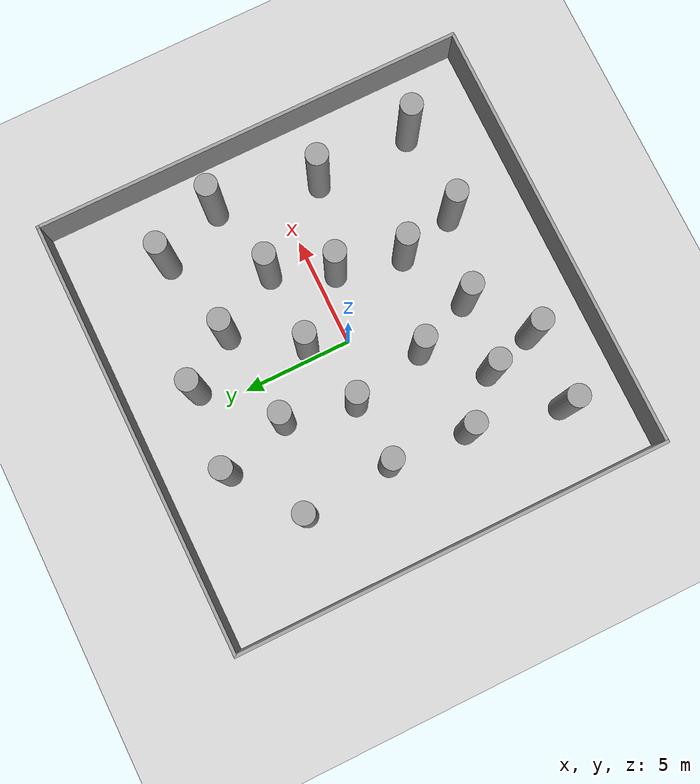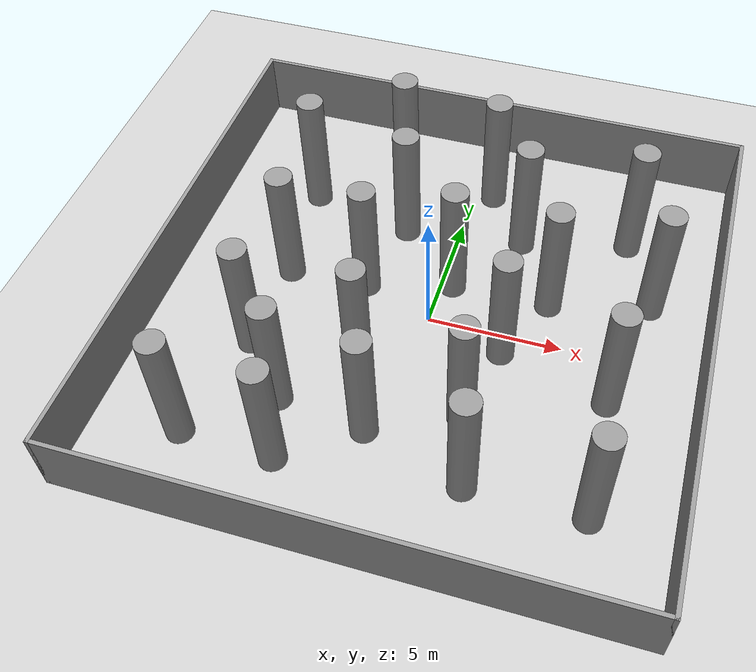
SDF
<sdf version="1.7">
 <world name="default">
  <light name="sun" type="directional">
   <pose>0 0 10 0 -0 0</pose>
   <diffuse>0.8 0.8 0.8 1</diffuse>
   <specular>0.2 0.2 0.2 1</specular>
   <attenuation>
    <range>1000</range>
    <constant>0.9</constant>
    <linear>0.01</linear>
    <quadratic>0.001</quadratic>
   </attenuation>
   <direction>-0.5 0.1 -0.9</direction>
   <spot><inner_angle>0</inner_angle><outer_angle>0</outer_angle><falloff>0</falloff></spot>
  </light>
  <model name="ground_plane">
   <static>1</static>
   <link name="link">
    <collision name="collision">
     <geometry><plane><normal>0 0 1</normal><size>100 100</size></plane></geometry>
     <surface><friction><ode><mu>100</mu><mu2>50</mu2></ode></friction></surface>
    </collision>
    <visual name="visual">
     <cast_shadows>0</cast_shadows>
     <geometry><plane><normal>0 0 1</normal><size>100 100</size></plane></geometry>
     <material>
      <script><uri>file://media/materials/scripts/gazebo.material</uri><name>Gazebo/Grey</name></script>
     </material>
    </visual>
   </link>
  </model>
  <gravity>0 0 -9.8</gravity>
  <magnetic_field>6e-06 2.3e-05 -4.2e-05</magnetic_field>
  <atmosphere type="adiabatic"/>
  <physics type="ode">
   <max_step_size>0.001</max_step_size>
   <real_time_factor>1</real_time_factor>
   <real_time_update_rate>1000</real_time_update_rate>
  </physics>
  <scene><ambient>0.4 0.4 0.4 1</ambient><background>0.7 0.7 0.7 1</background><shadows>1</shadows></scene>
  <spherical_coordinates>
   <surface_model>EARTH_WGS84</surface_model>
   <latitude_deg>0</latitude_deg>
   <longitude_deg>0</longitude_deg>
   <elevation>0</elevation>
   <heading_deg>0</heading_deg>
  </spherical_coordinates>
  <model name="Fence20">
   <link name="Wall_0">
    <collision name="Wall_0_Collision">
     <geometry><box><size>20.15 0.15 2.5</size></box></geometry>
     <pose>0 0 1.25 0 -0 0</pose>
    </collision>
    <visual name="Wall_0_Visual">
     <pose>0 0 1.25 0 -0 0</pose>
     <geometry><box><size>20.15 0.15 2.5</size></box></geometry>
     <material>
      <script><uri>file://media/materials/scripts/gazebo.material</uri><name>Gazebo/Grey</name></script>
      <ambient>1 1 1 1</ambient>
     </material>
     <meta><layer>0</layer></meta>
    </visual>
    <pose>0 -10 0 0 -0 0</pose>
   </link>
   <link name="Wall_1">
    <collision name="Wall_1_Collision">
     <geometry><box><size>20.15 0.15 2.5</size></box></geometry>
     <pose>0 0 1.25 0 -0 0</pose>
    </collision>
    <visual name="Wall_1_Visual">
     <pose>0 0 1.25 0 -0 0</pose>
     <geometry><box><size>20.15 0.15 2.5</size></box></geometry>
     <material>
      <script><uri>file://media/materials/scripts/gazebo.material</uri><name>Gazebo/Grey</name></script>
      <ambient>1 1 1 1</ambient>
     </material>
     <meta><layer>0</layer></meta>
    </visual>
    <pose>10 0 0 0 -0 1.5708</pose>
   </link>
   <link name="Wall_2">
    <collision name="Wall_2_Collision">
     <geometry><box><size>20.15 0.15 2.5</size></box></geometry>
     <pose>0 0 1.25 0 -0 0</pose>
    </collision>
    <visual name="Wall_2_Visual">
     <pose>0 0 1.25 0 -0 0</pose>
     <geometry><box><size>20.15 0.15 2.5</size></box></geometry>
     <material>
      <script><uri>file://media/materials/scripts/gazebo.material</uri><name>Gazebo/Grey</name></script>
      <ambient>1 1 1 1</ambient>
     </material>
     <meta><layer>0</layer></meta>
    </visual>
    <pose>0 10 0 0 -0 3.14159</pose>
   </link>
   <link name="Wall_3">
    <collision name="Wall_3_Collision">
     <geometry><box><size>20.15 0.15 2.5</size></box></geometry>
     <pose>0 0 1.25 0 -0 0</pose>
    </collision>
    <visual name="Wall_3_Visual">
     <pose>0 0 1.25 0 -0 0</pose>
     <geometry><box><size>20.15 0.15 2.5</size></box></geometry>
     <material>
      <script><uri>file://media/materials/scripts/gazebo.material</uri><name>Gazebo/Grey</name></script>
      <ambient>1 1 1 1</ambient>
     </material>
     <meta><layer>0</layer></meta>
    </visual>
    <pose>-10 0 0 0 -0 -1.5708</pose>
   </link>
   <static>1</static>
  </model>
  <model name="cylinder5">
   <link name="link">
    <inertial>
     <mass>1</mass>
     <inertia><ixx>0.145833</ixx><ixy>0</ixy><ixz>0</ixz><iyy>0.145833</iyy><iyz>0</iyz><izz>0.125</izz></inertia>
    </inertial>
    <kinematic>1</kinematic>
    <visual name="visual">
     <geometry><cylinder><radius>0.5</radius><length>5</length></cylinder></geometry>
     <material>
      <script><name>Gazebo/Grey</name><uri>file://media/materials/scripts/gazebo.material</uri></script>
      <shader type="pixel"><normal_map>__default__</normal_map></shader>
      <ambient>0.3 0.3 0.3 1</ambient>
      <diffuse>0.7 0.7 0.7 1</diffuse>
      <specular>0.01 0.01 0.01 1</specular>
      <emissive>0 0 0 1</emissive>
     </material>
    </visual>
    <collision name="collision">
     <geometry><cylinder><radius>0.5</radius><length>5</length></cylinder></geometry>
     <surface>
      <friction>
       <ode><mu>1</mu><mu2>1</mu2><fdir1>0 0 0</fdir1><slip1>0</slip1><slip2>0</slip2></ode>
       <torsional>
        <coefficient>1</coefficient>
        <patch_radius>0</patch_radius>
        <surface_radius>0</surface_radius>
        <use_patch_radius>1</use_patch_radius>
        <ode><slip>0</slip></ode>
       </torsional>
      </friction>
      <bounce><restitution_coefficient>0</restitution_coefficient><threshold>1e+06</threshold></bounce>
      <contact>
       <collide_without_contact>0</collide_without_contact>
       <collide_without_contact_bitmask>1</collide_without_contact_bitmask>
       <collide_bitmask>1</collide_bitmask>
       <ode>
        <soft_cfm>0</soft_cfm>
        <soft_erp>0.2</soft_erp>
        <kp>1e+13</kp>
        <kd>1</kd>
        <max_vel>0.01</max_vel>
        <min_depth>0</min_depth>
       </ode>
       <bullet>
        <split_impulse>1</split_impulse>
        <split_impulse_penetration_threshold>-0.01</split_impulse_penetration_threshold>
        <soft_cfm>0</soft_cfm>
        <soft_erp>0.2</soft_erp>
        <kp>1e+13</kp>
        <kd>1</kd>
       </bullet>
      </contact>
     </surface>
    </collision>
   </link>
   <static>0</static>
   <pose>-1.85959 -2.57782 2.49999 0 -0 0.000166</pose>
  </model>
  <model name="cylinder5_clone">
   <link name="link">
    <inertial>
     <mass>1</mass>
     <inertia><ixx>0.145833</ixx><ixy>0</ixy><ixz>0</ixz><iyy>0.145833</iyy><iyz>0</iyz><izz>0.125</izz></inertia>
    </inertial>
    <kinematic>1</kinematic>
    <visual name="visual">
     <geometry><cylinder><radius>0.5</radius><length>5</length></cylinder></geometry>
     <material>
      <script><name>Gazebo/Grey</name><uri>file://media/materials/scripts/gazebo.material</uri></script>
      <shader type="pixel"><normal_map>__default__</normal_map></shader>
      <ambient>0.3 0.3 0.3 1</ambient>
      <diffuse>0.7 0.7 0.7 1</diffuse>
      <specular>0.01 0.01 0.01 1</specular>
      <emissive>0 0 0 1</emissive>
     </material>
    </visual>
    <collision name="collision">
     <geometry><cylinder><radius>0.5</radius><length>5</length></cylinder></geometry>
     <surface>
      <friction>
       <ode><mu>1</mu><mu2>1</mu2><fdir1>0 0 0</fdir1><slip1>0</slip1><slip2>0</slip2></ode>
       <torsional>
        <coefficient>1</coefficient>
        <patch_radius>0</patch_radius>
        <surface_radius>0</surface_radius>
        <use_patch_radius>1</use_patch_radius>
        <ode><slip>0</slip></ode>
       </torsional>
      </friction>
      <bounce><restitution_coefficient>0</restitution_coefficient><threshold>1e+06</threshold></bounce>
      <contact>
       <collide_without_contact>0</collide_without_contact>
       <collide_without_contact_bitmask>1</collide_without_contact_bitmask>
       <collide_bitmask>1</collide_bitmask>
       <ode>
        <soft_cfm>0</soft_cfm>
        <soft_erp>0.2</soft_erp>
        <kp>1e+13</kp>
        <kd>1</kd>
        <max_vel>0.01</max_vel>
        <min_depth>0</min_depth>
       </ode>
       <bullet>
        <split_impulse>1</split_impulse>
        <split_impulse_penetration_threshold>-0.01</split_impulse_penetration_threshold>
        <soft_cfm>0</soft_cfm>
        <soft_erp>0.2</soft_erp>
        <kp>1e+13</kp>
        <kd>1</kd>
       </bullet>
      </contact>
     </surface>
    </collision>
   </link>
   <static>0</static>
   <pose>3.0107 -6.4629 2.5 0 -0 0.000166</pose>
  </model>
  <model name="cylinder5_clone_0">
   <link name="link">
    <inertial>
     <mass>1</mass>
     <inertia><ixx>0.145833</ixx><ixy>0</ixy><ixz>0</ixz><iyy>0.145833</iyy><iyz>0</iyz><izz>0.125</izz></inertia>
    </inertial>
    <kinematic>1</kinematic>
    <visual name="visual">
     <geometry><cylinder><radius>0.5</radius><length>5</length></cylinder></geometry>
     <material>
      <script><name>Gazebo/Grey</name><uri>file://media/materials/scripts/gazebo.material</uri></script>
      <shader type="pixel"><normal_map>__default__</normal_map></shader>
      <ambient>0.3 0.3 0.3 1</ambient>
      <diffuse>0.7 0.7 0.7 1</diffuse>
      <specular>0.01 0.01 0.01 1</specular>
      <emissive>0 0 0 1</emissive>
     </material>
    </visual>
    <collision name="collision">
     <geometry><cylinder><radius>0.5</radius><length>5</length></cylinder></geometry>
     <surface>
      <friction>
       <ode><mu>1</mu><mu2>1</mu2><fdir1>0 0 0</fdir1><slip1>0</slip1><slip2>0</slip2></ode>
       <torsional>
        <coefficient>1</coefficient>
        <patch_radius>0</patch_radius>
        <surface_radius>0</surface_radius>
        <use_patch_radius>1</use_patch_radius>
        <ode><slip>0</slip></ode>
       </torsional>
      </friction>
      <bounce><restitution_coefficient>0</restitution_coefficient><threshold>1e+06</threshold></bounce>
      <contact>
       <collide_without_contact>0</collide_without_contact>
       <collide_without_contact_bitmask>1</collide_without_contact_bitmask>
       <collide_bitmask>1</collide_bitmask>
       <ode>
        <soft_cfm>0</soft_cfm>
        <soft_erp>0.2</soft_erp>
        <kp>1e+13</kp>
        <kd>1</kd>
        <max_vel>0.01</max_vel>
        <min_depth>0</min_depth>
       </ode>
       <bullet>
        <split_impulse>1</split_impulse>
        <split_impulse_penetration_threshold>-0.01</split_impulse_penetration_threshold>
        <soft_cfm>0</soft_cfm>
        <soft_erp>0.2</soft_erp>
        <kp>1e+13</kp>
        <kd>1</kd>
       </bullet>
      </contact>
     </surface>
    </collision>
   </link>
   <static>0</static>
   <pose>-3.30986 -7.1593 2.5 0 -0 0.000166</pose>
  </model>
  <model name="cylinder5_clone_1">
   <link name="link">
    <inertial>
     <mass>1</mass>
     <inertia><ixx>0.145833</ixx><ixy>0</ixy><ixz>0</ixz><iyy>0.145833</iyy><iyz>0</iyz><izz>0.125</izz></inertia>
    </inertial>
    <kinematic>1</kinematic>
    <visual name="visual">
     <geometry><cylinder><radius>0.5</radius><length>5</length></cylinder></geometry>
     <material>
      <script><name>Gazebo/Grey</name><uri>file://media/materials/scripts/gazebo.material</uri></script>
      <shader type="pixel"><normal_map>__default__</normal_map></shader>
      <ambient>0.3 0.3 0.3 1</ambient>
      <diffuse>0.7 0.7 0.7 1</diffuse>
      <specular>0.01 0.01 0.01 1</specular>
      <emissive>0 0 0 1</emissive>
     </material>
    </visual>
    <collision name="collision">
     <geometry><cylinder><radius>0.5</radius><length>5</length></cylinder></geometry>
     <surface>
      <friction>
       <ode><mu>1</mu><mu2>1</mu2><fdir1>0 0 0</fdir1><slip1>0</slip1><slip2>0</slip2></ode>
       <torsional>
        <coefficient>1</coefficient>
        <patch_radius>0</patch_radius>
        <surface_radius>0</surface_radius>
        <use_patch_radius>1</use_patch_radius>
        <ode><slip>0</slip></ode>
       </torsional>
      </friction>
      <bounce><restitution_coefficient>0</restitution_coefficient><threshold>1e+06</threshold></bounce>
      <contact>
       <collide_without_contact>0</collide_without_contact>
       <collide_without_contact_bitmask>1</collide_without_contact_bitmask>
       <collide_bitmask>1</collide_bitmask>
       <ode>
        <soft_cfm>0</soft_cfm>
        <soft_erp>0.2</soft_erp>
        <kp>1e+13</kp>
        <kd>1</kd>
        <max_vel>0.01</max_vel>
        <min_depth>0</min_depth>
       </ode>
       <bullet>
        <split_impulse>1</split_impulse>
        <split_impulse_penetration_threshold>-0.01</split_impulse_penetration_threshold>
        <soft_cfm>0</soft_cfm>
        <soft_erp>0.2</soft_erp>
        <kp>1e+13</kp>
        <kd>1</kd>
       </bullet>
      </contact>
     </surface>
    </collision>
   </link>
   <static>0</static>
   <pose>-5.88262 -2.82624 2.5 0 -0 0.000166</pose>
  </model>
  <model name="cylinder5_clone_2">
   <link name="link">
    <inertial>
     <mass>1</mass>
     <inertia><ixx>0.145833</ixx><ixy>0</ixy><ixz>0</ixz><iyy>0.145833</iyy><iyz>0</iyz><izz>0.125</izz></inertia>
    </inertial>
    <kinematic>1</kinematic>
    <visual name="visual">
     <geometry><cylinder><radius>0.5</radius><length>5</length></cylinder></geometry>
     <material>
      <script><name>Gazebo/Grey</name><uri>file://media/materials/scripts/gazebo.material</uri></script>
      <shader type="pixel"><normal_map>__default__</normal_map></shader>
      <ambient>0.3 0.3 0.3 1</ambient>
      <diffuse>0.7 0.7 0.7 1</diffuse>
      <specular>0.01 0.01 0.01 1</specular>
      <emissive>0 0 0 1</emissive>
     </material>
    </visual>
    <collision name="collision">
     <geometry><cylinder><radius>0.5</radius><length>5</length></cylinder></geometry>
     <surface>
      <friction>
       <ode><mu>1</mu><mu2>1</mu2><fdir1>0 0 0</fdir1><slip1>0</slip1><slip2>0</slip2></ode>
       <torsional>
        <coefficient>1</coefficient>
        <patch_radius>0</patch_radius>
        <surface_radius>0</surface_radius>
        <use_patch_radius>1</use_patch_radius>
        <ode><slip>0</slip></ode>
       </torsional>
      </friction>
      <bounce><restitution_coefficient>0</restitution_coefficient><threshold>1e+06</threshold></bounce>
      <contact>
       <collide_without_contact>0</collide_without_contact>
       <collide_without_contact_bitmask>1</collide_without_contact_bitmask>
       <collide_bitmask>1</collide_bitmask>
       <ode>
        <soft_cfm>0</soft_cfm>
        <soft_erp>0.2</soft_erp>
        <kp>1e+13</kp>
        <kd>1</kd>
        <max_vel>0.01</max_vel>
        <min_depth>0</min_depth>
       </ode>
       <bullet>
        <split_impulse>1</split_impulse>
        <split_impulse_penetration_threshold>-0.01</split_impulse_penetration_threshold>
        <soft_cfm>0</soft_cfm>
        <soft_erp>0.2</soft_erp>
        <kp>1e+13</kp>
        <kd>1</kd>
       </bullet>
      </contact>
     </surface>
    </collision>
   </link>
   <static>0</static>
   <pose>6.46806 5.6564 2.5 0 -0 0.000166</pose>
  </model>
  <model name="cylinder5_clone_3">
   <link name="link">
    <inertial>
     <mass>1</mass>
     <inertia><ixx>0.145833</ixx><ixy>0</ixy><ixz>0</ixz><iyy>0.145833</iyy><iyz>0</iyz><izz>0.125</izz></inertia>
    </inertial>
    <kinematic>1</kinematic>
    <visual name="visual">
     <geometry><cylinder><radius>0.5</radius><length>5</length></cylinder></geometry>
     <material>
      <script><name>Gazebo/Grey</name><uri>file://media/materials/scripts/gazebo.material</uri></script>
      <shader type="pixel"><normal_map>__default__</normal_map></shader>
      <ambient>0.3 0.3 0.3 1</ambient>
      <diffuse>0.7 0.7 0.7 1</diffuse>
      <specular>0.01 0.01 0.01 1</specular>
      <emissive>0 0 0 1</emissive>
     </material>
    </visual>
    <collision name="collision">
     <geometry><cylinder><radius>0.5</radius><length>5</length></cylinder></geometry>
     <surface>
      <friction>
       <ode><mu>1</mu><mu2>1</mu2><fdir1>0 0 0</fdir1><slip1>0</slip1><slip2>0</slip2></ode>
       <torsional>
        <coefficient>1</coefficient>
        <patch_radius>0</patch_radius>
        <surface_radius>0</surface_radius>
        <use_patch_radius>1</use_patch_radius>
        <ode><slip>0</slip></ode>
       </torsional>
      </friction>
      <bounce><restitution_coefficient>0</restitution_coefficient><threshold>1e+06</threshold></bounce>
      <contact>
       <collide_without_contact>0</collide_without_contact>
       <collide_without_contact_bitmask>1</collide_without_contact_bitmask>
       <collide_bitmask>1</collide_bitmask>
       <ode>
        <soft_cfm>0</soft_cfm>
        <soft_erp>0.2</soft_erp>
        <kp>1e+13</kp>
        <kd>1</kd>
        <max_vel>0.01</max_vel>
        <min_depth>0</min_depth>
       </ode>
       <bullet>
        <split_impulse>1</split_impulse>
        <split_impulse_penetration_threshold>-0.01</split_impulse_penetration_threshold>
        <soft_cfm>0</soft_cfm>
        <soft_erp>0.2</soft_erp>
        <kp>1e+13</kp>
        <kd>1</kd>
       </bullet>
      </contact>
     </surface>
    </collision>
   </link>
   <static>0</static>
   <pose>6.95319 -1.93149 2.5 0 -0 0.000166</pose>
  </model>
  <model name="cylinder5_clone_4">
   <link name="link">
    <inertial>
     <mass>1</mass>
     <inertia><ixx>0.145833</ixx><ixy>0</ixy><ixz>0</ixz><iyy>0.145833</iyy><iyz>0</iyz><izz>0.125</izz></inertia>
    </inertial>
    <kinematic>1</kinematic>
    <visual name="visual">
     <geometry><cylinder><radius>0.5</radius><length>5</length></cylinder></geometry>
     <material>
      <script><name>Gazebo/Grey</name><uri>file://media/materials/scripts/gazebo.material</uri></script>
      <shader type="pixel"><normal_map>__default__</normal_map></shader>
      <ambient>0.3 0.3 0.3 1</ambient>
      <diffuse>0.7 0.7 0.7 1</diffuse>
      <specular>0.01 0.01 0.01 1</specular>
      <emissive>0 0 0 1</emissive>
     </material>
    </visual>
    <collision name="collision">
     <geometry><cylinder><radius>0.5</radius><length>5</length></cylinder></geometry>
     <surface>
      <friction>
       <ode><mu>1</mu><mu2>1</mu2><fdir1>0 0 0</fdir1><slip1>0</slip1><slip2>0</slip2></ode>
       <torsional>
        <coefficient>1</coefficient>
        <patch_radius>0</patch_radius>
        <surface_radius>0</surface_radius>
        <use_patch_radius>1</use_patch_radius>
        <ode><slip>0</slip></ode>
       </torsional>
      </friction>
      <bounce><restitution_coefficient>0</restitution_coefficient><threshold>1e+06</threshold></bounce>
      <contact>
       <collide_without_contact>0</collide_without_contact>
       <collide_without_contact_bitmask>1</collide_without_contact_bitmask>
       <collide_bitmask>1</collide_bitmask>
       <ode>
        <soft_cfm>0</soft_cfm>
        <soft_erp>0.2</soft_erp>
        <kp>1e+13</kp>
        <kd>1</kd>
        <max_vel>0.01</max_vel>
        <min_depth>0</min_depth>
       </ode>
       <bullet>
        <split_impulse>1</split_impulse>
        <split_impulse_penetration_threshold>-0.01</split_impulse_penetration_threshold>
        <soft_cfm>0</soft_cfm>
        <soft_erp>0.2</soft_erp>
        <kp>1e+13</kp>
        <kd>1</kd>
       </bullet>
      </contact>
     </surface>
    </collision>
   </link>
   <static>0</static>
   <pose>-2.06466 4.08754 2.5 0 -0 0.000166</pose>
  </model>
  <model name="cylinder5_clone_5">
   <link name="link">
    <inertial>
     <mass>1</mass>
     <inertia><ixx>0.145833</ixx><ixy>0</ixy><ixz>0</ixz><iyy>0.145833</iyy><iyz>0</iyz><izz>0.125</izz></inertia>
    </inertial>
    <kinematic>1</kinematic>
    <visual name="visual">
     <geometry><cylinder><radius>0.5</radius><length>5</length></cylinder></geometry>
     <material>
      <script><name>Gazebo/Grey</name><uri>file://media/materials/scripts/gazebo.material</uri></script>
      <shader type="pixel"><normal_map>__default__</normal_map></shader>
      <ambient>0.3 0.3 0.3 1</ambient>
      <diffuse>0.7 0.7 0.7 1</diffuse>
      <specular>0.01 0.01 0.01 1</specular>
      <emissive>0 0 0 1</emissive>
     </material>
    </visual>
    <collision name="collision">
     <geometry><cylinder><radius>0.5</radius><length>5</length></cylinder></geometry>
     <surface>
      <friction>
       <ode><mu>1</mu><mu2>1</mu2><fdir1>0 0 0</fdir1><slip1>0</slip1><slip2>0</slip2></ode>
       <torsional>
        <coefficient>1</coefficient>
        <patch_radius>0</patch_radius>
        <surface_radius>0</surface_radius>
        <use_patch_radius>1</use_patch_radius>
        <ode><slip>0</slip></ode>
       </torsional>
      </friction>
      <bounce><restitution_coefficient>0</restitution_coefficient><threshold>1e+06</threshold></bounce>
      <contact>
       <collide_without_contact>0</collide_without_contact>
       <collide_without_contact_bitmask>1</collide_without_contact_bitmask>
       <collide_bitmask>1</collide_bitmask>
       <ode>
        <soft_cfm>0</soft_cfm>
        <soft_erp>0.2</soft_erp>
        <kp>1e+13</kp>
        <kd>1</kd>
        <max_vel>0.01</max_vel>
        <min_depth>0</min_depth>
       </ode>
       <bullet>
        <split_impulse>1</split_impulse>
        <split_impulse_penetration_threshold>-0.01</split_impulse_penetration_threshold>
        <soft_cfm>0</soft_cfm>
        <soft_erp>0.2</soft_erp>
        <kp>1e+13</kp>
        <kd>1</kd>
       </bullet>
      </contact>
     </surface>
    </collision>
   </link>
   <static>0</static>
   <pose>-6.10724 4.94681 2.5 0 -0 0.000166</pose>
  </model>
  <model name="cylinder5_clone_5_clone">
   <link name="link">
    <inertial>
     <mass>1</mass>
     <inertia><ixx>0.145833</ixx><ixy>0</ixy><ixz>0</ixz><iyy>0.145833</iyy><iyz>0</iyz><izz>0.125</izz></inertia>
    </inertial>
    <kinematic>1</kinematic>
    <visual name="visual">
     <geometry><cylinder><radius>0.5</radius><length>5</length></cylinder></geometry>
     <material>
      <script><name>Gazebo/Grey</name><uri>file://media/materials/scripts/gazebo.material</uri></script>
      <shader type="pixel"><normal_map>__default__</normal_map></shader>
      <ambient>0.3 0.3 0.3 1</ambient>
      <diffuse>0.7 0.7 0.7 1</diffuse>
      <specular>0.01 0.01 0.01 1</specular>
      <emissive>0 0 0 1</emissive>
     </material>
    </visual>
    <collision name="collision">
     <geometry><cylinder><radius>0.5</radius><length>5</length></cylinder></geometry>
     <surface>
      <friction>
       <ode><mu>1</mu><mu2>1</mu2><fdir1>0 0 0</fdir1><slip1>0</slip1><slip2>0</slip2></ode>
       <torsional>
        <coefficient>1</coefficient>
        <patch_radius>0</patch_radius>
        <surface_radius>0</surface_radius>
        <use_patch_radius>1</use_patch_radius>
        <ode><slip>0</slip></ode>
       </torsional>
      </friction>
      <bounce><restitution_coefficient>0</restitution_coefficient><threshold>1e+06</threshold></bounce>
      <contact>
       <collide_without_contact>0</collide_without_contact>
       <collide_without_contact_bitmask>1</collide_without_contact_bitmask>
       <collide_bitmask>1</collide_bitmask>
       <ode>
        <soft_cfm>0</soft_cfm>
        <soft_erp>0.2</soft_erp>
        <kp>1e+13</kp>
        <kd>1</kd>
        <max_vel>0.01</max_vel>
        <min_depth>0</min_depth>
       </ode>
       <bullet>
        <split_impulse>1</split_impulse>
        <split_impulse_penetration_threshold>-0.01</split_impulse_penetration_threshold>
        <soft_cfm>0</soft_cfm>
        <soft_erp>0.2</soft_erp>
        <kp>1e+13</kp>
        <kd>1</kd>
       </bullet>
      </contact>
     </surface>
    </collision>
   </link>
   <static>0</static>
   <pose>4.10589 1.84667 2.5 0 -0 0.000166</pose>
  </model>
  <model name="cylinder5_clone_5_clone_0">
   <link name="link">
    <inertial>
     <mass>1</mass>
     <inertia><ixx>0.145833</ixx><ixy>0</ixy><ixz>0</ixz><iyy>0.145833</iyy><iyz>0</iyz><izz>0.125</izz></inertia>
    </inertial>
    <kinematic>1</kinematic>
    <visual name="visual">
     <geometry><cylinder><radius>0.5</radius><length>5</length></cylinder></geometry>
     <material>
      <script><name>Gazebo/Grey</name><uri>file://media/materials/scripts/gazebo.material</uri></script>
      <shader type="pixel"><normal_map>__default__</normal_map></shader>
      <ambient>0.3 0.3 0.3 1</ambient>
      <diffuse>0.7 0.7 0.7 1</diffuse>
      <specular>0.01 0.01 0.01 1</specular>
      <emissive>0 0 0 1</emissive>
     </material>
    </visual>
    <collision name="collision">
     <geometry><cylinder><radius>0.5</radius><length>5</length></cylinder></geometry>
     <surface>
      <friction>
       <ode><mu>1</mu><mu2>1</mu2><fdir1>0 0 0</fdir1><slip1>0</slip1><slip2>0</slip2></ode>
       <torsional>
        <coefficient>1</coefficient>
        <patch_radius>0</patch_radius>
        <surface_radius>0</surface_radius>
        <use_patch_radius>1</use_patch_radius>
        <ode><slip>0</slip></ode>
       </torsional>
      </friction>
      <bounce><restitution_coefficient>0</restitution_coefficient><threshold>1e+06</threshold></bounce>
      <contact>
       <collide_without_contact>0</collide_without_contact>
       <collide_without_contact_bitmask>1</collide_without_contact_bitmask>
       <collide_bitmask>1</collide_bitmask>
       <ode>
        <soft_cfm>0</soft_cfm>
        <soft_erp>0.2</soft_erp>
        <kp>1e+13</kp>
        <kd>1</kd>
        <max_vel>0.01</max_vel>
        <min_depth>0</min_depth>
       </ode>
       <bullet>
        <split_impulse>1</split_impulse>
        <split_impulse_penetration_threshold>-0.01</split_impulse_penetration_threshold>
        <soft_cfm>0</soft_cfm>
        <soft_erp>0.2</soft_erp>
        <kp>1e+13</kp>
        <kd>1</kd>
       </bullet>
      </contact>
     </surface>
    </collision>
   </link>
   <static>0</static>
   <pose>2.27155 -3.82382 2.5 0 -0 0.000166</pose>
  </model>
  <model name="cylinder5_clone_5_clone_1">
   <link name="link">
    <inertial>
     <mass>1</mass>
     <inertia><ixx>0.145833</ixx><ixy>0</ixy><ixz>0</ixz><iyy>0.145833</iyy><iyz>0</iyz><izz>0.125</izz></inertia>
    </inertial>
    <kinematic>1</kinematic>
    <visual name="visual">
     <geometry><cylinder><radius>0.5</radius><length>5</length></cylinder></geometry>
     <material>
      <script><name>Gazebo/Grey</name><uri>file://media/materials/scripts/gazebo.material</uri></script>
      <shader type="pixel"><normal_map>__default__</normal_map></shader>
      <ambient>0.3 0.3 0.3 1</ambient>
      <diffuse>0.7 0.7 0.7 1</diffuse>
      <specular>0.01 0.01 0.01 1</specular>
      <emissive>0 0 0 1</emissive>
     </material>
    </visual>
    <collision name="collision">
     <geometry><cylinder><radius>0.5</radius><length>5</length></cylinder></geometry>
     <surface>
      <friction>
       <ode><mu>1</mu><mu2>1</mu2><fdir1>0 0 0</fdir1><slip1>0</slip1><slip2>0</slip2></ode>
       <torsional>
        <coefficient>1</coefficient>
        <patch_radius>0</patch_radius>
        <surface_radius>0</surface_radius>
        <use_patch_radius>1</use_patch_radius>
        <ode><slip>0</slip></ode>
       </torsional>
      </friction>
      <bounce><restitution_coefficient>0</restitution_coefficient><threshold>1e+06</threshold></bounce>
      <contact>
       <collide_without_contact>0</collide_without_contact>
       <collide_without_contact_bitmask>1</collide_without_contact_bitmask>
       <collide_bitmask>1</collide_bitmask>
       <ode>
        <soft_cfm>0</soft_cfm>
        <soft_erp>0.2</soft_erp>
        <kp>1e+13</kp>
        <kd>1</kd>
        <max_vel>0.01</max_vel>
        <min_depth>0</min_depth>
       </ode>
       <bullet>
        <split_impulse>1</split_impulse>
        <split_impulse_penetration_threshold>-0.01</split_impulse_penetration_threshold>
        <soft_cfm>0</soft_cfm>
        <soft_erp>0.2</soft_erp>
        <kp>1e+13</kp>
        <kd>1</kd>
       </bullet>
      </contact>
     </surface>
    </collision>
   </link>
   <static>0</static>
   <pose>0.765852 6.874 2.5 0 -0 0.000166</pose>
  </model>
  <model name="cylinder5_clone_6">
   <link name="link">
    <inertial>
     <mass>1</mass>
     <inertia><ixx>0.145833</ixx><ixy>0</ixy><ixz>0</ixz><iyy>0.145833</iyy><iyz>0</iyz><izz>0.125</izz></inertia>
    </inertial>
    <kinematic>1</kinematic>
    <visual name="visual">
     <geometry><cylinder><radius>0.5</radius><length>5</length></cylinder></geometry>
     <material>
      <script><name>Gazebo/Grey</name><uri>file://media/materials/scripts/gazebo.material</uri></script>
      <shader type="pixel"><normal_map>__default__</normal_map></shader>
      <ambient>0.3 0.3 0.3 1</ambient>
      <diffuse>0.7 0.7 0.7 1</diffuse>
      <specular>0.01 0.01 0.01 1</specular>
      <emissive>0 0 0 1</emissive>
     </material>
    </visual>
    <collision name="collision">
     <geometry><cylinder><radius>0.5</radius><length>5</length></cylinder></geometry>
     <surface>
      <friction>
       <ode><mu>1</mu><mu2>1</mu2><fdir1>0 0 0</fdir1><slip1>0</slip1><slip2>0</slip2></ode>
       <torsional>
        <coefficient>1</coefficient>
        <patch_radius>0</patch_radius>
        <surface_radius>0</surface_radius>
        <use_patch_radius>1</use_patch_radius>
        <ode><slip>0</slip></ode>
       </torsional>
      </friction>
      <bounce><restitution_coefficient>0</restitution_coefficient><threshold>1e+06</threshold></bounce>
      <contact>
       <collide_without_contact>0</collide_without_contact>
       <collide_without_contact_bitmask>1</collide_without_contact_bitmask>
       <collide_bitmask>1</collide_bitmask>
       <ode>
        <soft_cfm>0</soft_cfm>
        <soft_erp>0.2</soft_erp>
        <kp>1e+13</kp>
        <kd>1</kd>
        <max_vel>0.01</max_vel>
        <min_depth>0</min_depth>
       </ode>
       <bullet>
        <split_impulse>1</split_impulse>
        <split_impulse_penetration_threshold>-0.01</split_impulse_penetration_threshold>
        <soft_cfm>0</soft_cfm>
        <soft_erp>0.2</soft_erp>
        <kp>1e+13</kp>
        <kd>1</kd>
       </bullet>
      </contact>
     </surface>
    </collision>
   </link>
   <static>0</static>
   <pose>2.91852 -0.804112 2.49999 0 -0 0.000166</pose>
  </model>
  <model name="cylinder5_clone_7">
   <link name="link">
    <inertial>
     <mass>1</mass>
     <inertia><ixx>0.145833</ixx><ixy>0</ixy><ixz>0</ixz><iyy>0.145833</iyy><iyz>0</iyz><izz>0.125</izz></inertia>
    </inertial>
    <kinematic>1</kinematic>
    <visual name="visual">
     <geometry><cylinder><radius>0.5</radius><length>5</length></cylinder></geometry>
     <material>
      <script><name>Gazebo/Grey</name><uri>file://media/materials/scripts/gazebo.material</uri></script>
      <shader type="pixel"><normal_map>__default__</normal_map></shader>
      <ambient>0.3 0.3 0.3 1</ambient>
      <diffuse>0.7 0.7 0.7 1</diffuse>
      <specular>0.01 0.01 0.01 1</specular>
      <emissive>0 0 0 1</emissive>
     </material>
    </visual>
    <collision name="collision">
     <geometry><cylinder><radius>0.5</radius><length>5</length></cylinder></geometry>
     <surface>
      <friction>
       <ode><mu>1</mu><mu2>1</mu2><fdir1>0 0 0</fdir1><slip1>0</slip1><slip2>0</slip2></ode>
       <torsional>
        <coefficient>1</coefficient>
        <patch_radius>0</patch_radius>
        <surface_radius>0</surface_radius>
        <use_patch_radius>1</use_patch_radius>
        <ode><slip>0</slip></ode>
       </torsional>
      </friction>
      <bounce><restitution_coefficient>0</restitution_coefficient><threshold>1e+06</threshold></bounce>
      <contact>
       <collide_without_contact>0</collide_without_contact>
       <collide_without_contact_bitmask>1</collide_without_contact_bitmask>
       <collide_bitmask>1</collide_bitmask>
       <ode>
        <soft_cfm>0</soft_cfm>
        <soft_erp>0.2</soft_erp>
        <kp>1e+13</kp>
        <kd>1</kd>
        <max_vel>0.01</max_vel>
        <min_depth>0</min_depth>
       </ode>
       <bullet>
        <split_impulse>1</split_impulse>
        <split_impulse_penetration_threshold>-0.01</split_impulse_penetration_threshold>
        <soft_cfm>0</soft_cfm>
        <soft_erp>0.2</soft_erp>
        <kp>1e+13</kp>
        <kd>1</kd>
       </bullet>
      </contact>
     </surface>
    </collision>
   </link>
   <static>0</static>
   <pose>-6.7261 -7.04296 2.49999 0 -0 0.000166</pose>
  </model>
  <model name="cylinder5_clone_8">
   <link name="link">
    <inertial>
     <mass>1</mass>
     <inertia><ixx>0.145833</ixx><ixy>0</ixy><ixz>0</ixz><iyy>0.145833</iyy><iyz>0</iyz><izz>0.125</izz></inertia>
    </inertial>
    <kinematic>1</kinematic>
    <visual name="visual">
     <geometry><cylinder><radius>0.5</radius><length>5</length></cylinder></geometry>
     <material>
      <script><name>Gazebo/Grey</name><uri>file://media/materials/scripts/gazebo.material</uri></script>
      <shader type="pixel"><normal_map>__default__</normal_map></shader>
      <ambient>0.3 0.3 0.3 1</ambient>
      <diffuse>0.7 0.7 0.7 1</diffuse>
      <specular>0.01 0.01 0.01 1</specular>
      <emissive>0 0 0 1</emissive>
     </material>
    </visual>
    <collision name="collision">
     <geometry><cylinder><radius>0.5</radius><length>5</length></cylinder></geometry>
     <surface>
      <friction>
       <ode><mu>1</mu><mu2>1</mu2><fdir1>0 0 0</fdir1><slip1>0</slip1><slip2>0</slip2></ode>
       <torsional>
        <coefficient>1</coefficient>
        <patch_radius>0</patch_radius>
        <surface_radius>0</surface_radius>
        <use_patch_radius>1</use_patch_radius>
        <ode><slip>0</slip></ode>
       </torsional>
      </friction>
      <bounce><restitution_coefficient>0</restitution_coefficient><threshold>1e+06</threshold></bounce>
      <contact>
       <collide_without_contact>0</collide_without_contact>
       <collide_without_contact_bitmask>1</collide_without_contact_bitmask>
       <collide_bitmask>1</collide_bitmask>
       <ode>
        <soft_cfm>0</soft_cfm>
        <soft_erp>0.2</soft_erp>
        <kp>1e+13</kp>
        <kd>1</kd>
        <max_vel>0.01</max_vel>
        <min_depth>0</min_depth>
       </ode>
       <bullet>
        <split_impulse>1</split_impulse>
        <split_impulse_penetration_threshold>-0.01</split_impulse_penetration_threshold>
        <soft_cfm>0</soft_cfm>
        <soft_erp>0.2</soft_erp>
        <kp>1e+13</kp>
        <kd>1</kd>
       </bullet>
      </contact>
     </surface>
    </collision>
   </link>
   <static>0</static>
   <pose>-4.01305 -4.86075 2.49999 0 -0 0.000166</pose>
  </model>
  <model name="cylinder5_clone_9">
   <link name="link">
    <inertial>
     <mass>1</mass>
     <inertia><ixx>0.145833</ixx><ixy>0</ixy><ixz>0</ixz><iyy>0.145833</iyy><iyz>0</iyz><izz>0.125</izz></inertia>
    </inertial>
    <kinematic>1</kinematic>
    <visual name="visual">
     <geometry><cylinder><radius>0.5</radius><length>5</length></cylinder></geometry>
     <material>
      <script><name>Gazebo/Grey</name><uri>file://media/materials/scripts/gazebo.material</uri></script>
      <shader type="pixel"><normal_map>__default__</normal_map></shader>
      <ambient>0.3 0.3 0.3 1</ambient>
      <diffuse>0.7 0.7 0.7 1</diffuse>
      <specular>0.01 0.01 0.01 1</specular>
      <emissive>0 0 0 1</emissive>
     </material>
    </visual>
    <collision name="collision">
     <geometry><cylinder><radius>0.5</radius><length>5</length></cylinder></geometry>
     <surface>
      <friction>
       <ode><mu>1</mu><mu2>1</mu2><fdir1>0 0 0</fdir1><slip1>0</slip1><slip2>0</slip2></ode>
       <torsional>
        <coefficient>1</coefficient>
        <patch_radius>0</patch_radius>
        <surface_radius>0</surface_radius>
        <use_patch_radius>1</use_patch_radius>
        <ode><slip>0</slip></ode>
       </torsional>
      </friction>
      <bounce><restitution_coefficient>0</restitution_coefficient><threshold>1e+06</threshold></bounce>
      <contact>
       <collide_without_contact>0</collide_without_contact>
       <collide_without_contact_bitmask>1</collide_without_contact_bitmask>
       <collide_bitmask>1</collide_bitmask>
       <ode>
        <soft_cfm>0</soft_cfm>
        <soft_erp>0.2</soft_erp>
        <kp>1e+13</kp>
        <kd>1</kd>
        <max_vel>0.01</max_vel>
        <min_depth>0</min_depth>
       </ode>
       <bullet>
        <split_impulse>1</split_impulse>
        <split_impulse_penetration_threshold>-0.01</split_impulse_penetration_threshold>
        <soft_cfm>0</soft_cfm>
        <soft_erp>0.2</soft_erp>
        <kp>1e+13</kp>
        <kd>1</kd>
       </bullet>
      </contact>
     </surface>
    </collision>
   </link>
   <static>0</static>
   <pose>-0.741858 -5.27527 2.49999 0 -0 0.000166</pose>
  </model>
  <model name="cylinder5_clone_10">
   <link name="link">
    <inertial>
     <mass>1</mass>
     <inertia><ixx>0.145833</ixx><ixy>0</ixy><ixz>0</ixz><iyy>0.145833</iyy><iyz>0</iyz><izz>0.125</izz></inertia>
    </inertial>
    <kinematic>1</kinematic>
    <visual name="visual">
     <geometry><cylinder><radius>0.5</radius><length>5</length></cylinder></geometry>
     <material>
      <script><name>Gazebo/Grey</name><uri>file://media/materials/scripts/gazebo.material</uri></script>
      <shader type="pixel"><normal_map>__default__</normal_map></shader>
      <ambient>0.3 0.3 0.3 1</ambient>
      <diffuse>0.7 0.7 0.7 1</diffuse>
      <specular>0.01 0.01 0.01 1</specular>
      <emissive>0 0 0 1</emissive>
     </material>
    </visual>
    <collision name="collision">
     <geometry><cylinder><radius>0.5</radius><length>5</length></cylinder></geometry>
     <surface>
      <friction>
       <ode><mu>1</mu><mu2>1</mu2><fdir1>0 0 0</fdir1><slip1>0</slip1><slip2>0</slip2></ode>
       <torsional>
        <coefficient>1</coefficient>
        <patch_radius>0</patch_radius>
        <surface_radius>0</surface_radius>
        <use_patch_radius>1</use_patch_radius>
        <ode><slip>0</slip></ode>
       </torsional>
      </friction>
      <bounce><restitution_coefficient>0</restitution_coefficient><threshold>1e+06</threshold></bounce>
      <contact>
       <collide_without_contact>0</collide_without_contact>
       <collide_without_contact_bitmask>1</collide_without_contact_bitmask>
       <collide_bitmask>1</collide_bitmask>
       <ode>
        <soft_cfm>0</soft_cfm>
        <soft_erp>0.2</soft_erp>
        <kp>1e+13</kp>
        <kd>1</kd>
        <max_vel>0.01</max_vel>
        <min_depth>0</min_depth>
       </ode>
       <bullet>
        <split_impulse>1</split_impulse>
        <split_impulse_penetration_threshold>-0.01</split_impulse_penetration_threshold>
        <soft_cfm>0</soft_cfm>
        <soft_erp>0.2</soft_erp>
        <kp>1e+13</kp>
        <kd>1</kd>
       </bullet>
      </contact>
     </surface>
    </collision>
   </link>
   <static>0</static>
   <pose>7.16881 -6.43471 2.49999 0 -0 0.000166</pose>
  </model>
  <model name="cylinder5_clone_11">
   <link name="link">
    <inertial>
     <mass>1</mass>
     <inertia><ixx>0.145833</ixx><ixy>0</ixy><ixz>0</ixz><iyy>0.145833</iyy><iyz>0</iyz><izz>0.125</izz></inertia>
    </inertial>
    <kinematic>1</kinematic>
    <visual name="visual">
     <geometry><cylinder><radius>0.5</radius><length>5</length></cylinder></geometry>
     <material>
      <script><name>Gazebo/Grey</name><uri>file://media/materials/scripts/gazebo.material</uri></script>
      <shader type="pixel"><normal_map>__default__</normal_map></shader>
      <ambient>0.3 0.3 0.3 1</ambient>
      <diffuse>0.7 0.7 0.7 1</diffuse>
      <specular>0.01 0.01 0.01 1</specular>
      <emissive>0 0 0 1</emissive>
     </material>
    </visual>
    <collision name="collision">
     <geometry><cylinder><radius>0.5</radius><length>5</length></cylinder></geometry>
     <surface>
      <friction>
       <ode><mu>1</mu><mu2>1</mu2><fdir1>0 0 0</fdir1><slip1>0</slip1><slip2>0</slip2></ode>
       <torsional>
        <coefficient>1</coefficient>
        <patch_radius>0</patch_radius>
        <surface_radius>0</surface_radius>
        <use_patch_radius>1</use_patch_radius>
        <ode><slip>0</slip></ode>
       </torsional>
      </friction>
      <bounce><restitution_coefficient>0</restitution_coefficient><threshold>1e+06</threshold></bounce>
      <contact>
       <collide_without_contact>0</collide_without_contact>
       <collide_without_contact_bitmask>1</collide_without_contact_bitmask>
       <collide_bitmask>1</collide_bitmask>
       <ode>
        <soft_cfm>0</soft_cfm>
        <soft_erp>0.2</soft_erp>
        <kp>1e+13</kp>
        <kd>1</kd>
        <max_vel>0.01</max_vel>
        <min_depth>0</min_depth>
       </ode>
       <bullet>
        <split_impulse>1</split_impulse>
        <split_impulse_penetration_threshold>-0.01</split_impulse_penetration_threshold>
        <soft_cfm>0</soft_cfm>
        <soft_erp>0.2</soft_erp>
        <kp>1e+13</kp>
        <kd>1</kd>
       </bullet>
      </contact>
     </surface>
    </collision>
   </link>
   <static>0</static>
   <pose>-5.70747 0.800864 2.49999 0 -0 0.000166</pose>
  </model>
  <model name="cylinder5_clone_12">
   <link name="link">
    <inertial>
     <mass>1</mass>
     <inertia><ixx>0.145833</ixx><ixy>0</ixy><ixz>0</ixz><iyy>0.145833</iyy><iyz>0</iyz><izz>0.125</izz></inertia>
    </inertial>
    <kinematic>1</kinematic>
    <visual name="visual">
     <geometry><cylinder><radius>0.5</radius><length>5</length></cylinder></geometry>
     <material>
      <script><name>Gazebo/Grey</name><uri>file://media/materials/scripts/gazebo.material</uri></script>
      <shader type="pixel"><normal_map>__default__</normal_map></shader>
      <ambient>0.3 0.3 0.3 1</ambient>
      <diffuse>0.7 0.7 0.7 1</diffuse>
      <specular>0.01 0.01 0.01 1</specular>
      <emissive>0 0 0 1</emissive>
     </material>
    </visual>
    <collision name="collision">
     <geometry><cylinder><radius>0.5</radius><length>5</length></cylinder></geometry>
     <surface>
      <friction>
       <ode><mu>1</mu><mu2>1</mu2><fdir1>0 0 0</fdir1><slip1>0</slip1><slip2>0</slip2></ode>
       <torsional>
        <coefficient>1</coefficient>
        <patch_radius>0</patch_radius>
        <surface_radius>0</surface_radius>
        <use_patch_radius>1</use_patch_radius>
        <ode><slip>0</slip></ode>
       </torsional>
      </friction>
      <bounce><restitution_coefficient>0</restitution_coefficient><threshold>1e+06</threshold></bounce>
      <contact>
       <collide_without_contact>0</collide_without_contact>
       <collide_without_contact_bitmask>1</collide_without_contact_bitmask>
       <collide_bitmask>1</collide_bitmask>
       <ode>
        <soft_cfm>0</soft_cfm>
        <soft_erp>0.2</soft_erp>
        <kp>1e+13</kp>
        <kd>1</kd>
        <max_vel>0.01</max_vel>
        <min_depth>0</min_depth>
       </ode>
       <bullet>
        <split_impulse>1</split_impulse>
        <split_impulse_penetration_threshold>-0.01</split_impulse_penetration_threshold>
        <soft_cfm>0</soft_cfm>
        <soft_erp>0.2</soft_erp>
        <kp>1e+13</kp>
        <kd>1</kd>
       </bullet>
      </contact>
     </surface>
    </collision>
   </link>
   <static>0</static>
   <pose>2.44269 4.66587 2.49999 0 -0 0.000166</pose>
  </model>
  <model name="cylinder5_clone_13">
   <link name="link">
    <inertial>
     <mass>1</mass>
     <inertia><ixx>0.145833</ixx><ixy>0</ixy><ixz>0</ixz><iyy>0.145833</iyy><iyz>0</iyz><izz>0.125</izz></inertia>
    </inertial>
    <kinematic>1</kinematic>
    <visual name="visual">
     <geometry><cylinder><radius>0.5</radius><length>5</length></cylinder></geometry>
     <material>
      <script><name>Gazebo/Grey</name><uri>file://media/materials/scripts/gazebo.material</uri></script>
      <shader type="pixel"><normal_map>__default__</normal_map></shader>
      <ambient>0.3 0.3 0.3 1</ambient>
      <diffuse>0.7 0.7 0.7 1</diffuse>
      <specular>0.01 0.01 0.01 1</specular>
      <emissive>0 0 0 1</emissive>
     </material>
    </visual>
    <collision name="collision">
     <geometry><cylinder><radius>0.5</radius><length>5</length></cylinder></geometry>
     <surface>
      <friction>
       <ode><mu>1</mu><mu2>1</mu2><fdir1>0 0 0</fdir1><slip1>0</slip1><slip2>0</slip2></ode>
       <torsional>
        <coefficient>1</coefficient>
        <patch_radius>0</patch_radius>
        <surface_radius>0</surface_radius>
        <use_patch_radius>1</use_patch_radius>
        <ode><slip>0</slip></ode>
       </torsional>
      </friction>
      <bounce><restitution_coefficient>0</restitution_coefficient><threshold>1e+06</threshold></bounce>
      <contact>
       <collide_without_contact>0</collide_without_contact>
       <collide_without_contact_bitmask>1</collide_without_contact_bitmask>
       <collide_bitmask>1</collide_bitmask>
       <ode>
        <soft_cfm>0</soft_cfm>
        <soft_erp>0.2</soft_erp>
        <kp>1e+13</kp>
        <kd>1</kd>
        <max_vel>0.01</max_vel>
        <min_depth>0</min_depth>
       </ode>
       <bullet>
        <split_impulse>1</split_impulse>
        <split_impulse_penetration_threshold>-0.01</split_impulse_penetration_threshold>
        <soft_cfm>0</soft_cfm>
        <soft_erp>0.2</soft_erp>
        <kp>1e+13</kp>
        <kd>1</kd>
       </bullet>
      </contact>
     </surface>
    </collision>
   </link>
   <static>0</static>
   <pose>7.77311 2.75593 2.49999 0 -0 0.000166</pose>
  </model>
  <model name="cylinder5_clone_15">
   <link name="link">
    <inertial>
     <mass>1</mass>
     <inertia><ixx>0.145833</ixx><ixy>0</ixy><ixz>0</ixz><iyy>0.145833</iyy><iyz>0</iyz><izz>0.125</izz></inertia>
    </inertial>
    <kinematic>1</kinematic>
    <visual name="visual">
     <geometry><cylinder><radius>0.5</radius><length>5</length></cylinder></geometry>
     <material>
      <script><name>Gazebo/Grey</name><uri>file://media/materials/scripts/gazebo.material</uri></script>
      <shader type="pixel"><normal_map>__default__</normal_map></shader>
      <ambient>0.3 0.3 0.3 1</ambient>
      <diffuse>0.7 0.7 0.7 1</diffuse>
      <specular>0.01 0.01 0.01 1</specular>
      <emissive>0 0 0 1</emissive>
     </material>
    </visual>
    <collision name="collision">
     <geometry><cylinder><radius>0.5</radius><length>5</length></cylinder></geometry>
     <surface>
      <friction>
       <ode><mu>1</mu><mu2>1</mu2><fdir1>0 0 0</fdir1><slip1>0</slip1><slip2>0</slip2></ode>
       <torsional>
        <coefficient>1</coefficient>
        <patch_radius>0</patch_radius>
        <surface_radius>0</surface_radius>
        <use_patch_radius>1</use_patch_radius>
        <ode><slip>0</slip></ode>
       </torsional>
      </friction>
      <bounce><restitution_coefficient>0</restitution_coefficient><threshold>1e+06</threshold></bounce>
      <contact>
       <collide_without_contact>0</collide_without_contact>
       <collide_without_contact_bitmask>1</collide_without_contact_bitmask>
       <collide_bitmask>1</collide_bitmask>
       <ode>
        <soft_cfm>0</soft_cfm>
        <soft_erp>0.2</soft_erp>
        <kp>1e+13</kp>
        <kd>1</kd>
        <max_vel>0.01</max_vel>
        <min_depth>0</min_depth>
       </ode>
       <bullet>
        <split_impulse>1</split_impulse>
        <split_impulse_penetration_threshold>-0.01</split_impulse_penetration_threshold>
        <soft_cfm>0</soft_cfm>
        <soft_erp>0.2</soft_erp>
        <kp>1e+13</kp>
        <kd>1</kd>
       </bullet>
      </contact>
     </surface>
    </collision>
   </link>
   <static>0</static>
   <pose>-3.04335 7.14431 2.49999 0 -0 0.000166</pose>
  </model>
  <model name="cylinder5_clone_16">
   <link name="link">
    <inertial>
     <mass>1</mass>
     <inertia><ixx>0.145833</ixx><ixy>0</ixy><ixz>0</ixz><iyy>0.145833</iyy><iyz>0</iyz><izz>0.125</izz></inertia>
    </inertial>
    <kinematic>1</kinematic>
    <visual name="visual">
     <geometry><cylinder><radius>0.5</radius><length>5</length></cylinder></geometry>
     <material>
      <script><name>Gazebo/Grey</name><uri>file://media/materials/scripts/gazebo.material</uri></script>
      <shader type="pixel"><normal_map>__default__</normal_map></shader>
      <ambient>0.3 0.3 0.3 1</ambient>
      <diffuse>0.7 0.7 0.7 1</diffuse>
      <specular>0.01 0.01 0.01 1</specular>
      <emissive>0 0 0 1</emissive>
     </material>
    </visual>
    <collision name="collision">
     <geometry><cylinder><radius>0.5</radius><length>5</length></cylinder></geometry>
     <surface>
      <friction>
       <ode><mu>1</mu><mu2>1</mu2><fdir1>0 0 0</fdir1><slip1>0</slip1><slip2>0</slip2></ode>
       <torsional>
        <coefficient>1</coefficient>
        <patch_radius>0</patch_radius>
        <surface_radius>0</surface_radius>
        <use_patch_radius>1</use_patch_radius>
        <ode><slip>0</slip></ode>
       </torsional>
      </friction>
      <bounce><restitution_coefficient>0</restitution_coefficient><threshold>1e+06</threshold></bounce>
      <contact>
       <collide_without_contact>0</collide_without_contact>
       <collide_without_contact_bitmask>1</collide_without_contact_bitmask>
       <collide_bitmask>1</collide_bitmask>
       <ode>
        <soft_cfm>0</soft_cfm>
        <soft_erp>0.2</soft_erp>
        <kp>1e+13</kp>
        <kd>1</kd>
        <max_vel>0.01</max_vel>
        <min_depth>0</min_depth>
       </ode>
       <bullet>
        <split_impulse>1</split_impulse>
        <split_impulse_penetration_threshold>-0.01</split_impulse_penetration_threshold>
        <soft_cfm>0</soft_cfm>
        <soft_erp>0.2</soft_erp>
        <kp>1e+13</kp>
        <kd>1</kd>
       </bullet>
      </contact>
     </surface>
    </collision>
   </link>
   <static>0</static>
   <pose>-2.69929 0.922849 2.49999 0 -0 0.000166</pose>
  </model>
  <model name="cylinder5_clone_16_clone">
   <link name="link">
    <inertial>
     <mass>1</mass>
     <inertia><ixx>0.145833</ixx><ixy>0</ixy><ixz>0</ixz><iyy>0.145833</iyy><iyz>0</iyz><izz>0.125</izz></inertia>
    </inertial>
    <kinematic>1</kinematic>
    <visual name="visual">
     <geometry><cylinder><radius>0.5</radius><length>5</length></cylinder></geometry>
     <material>
      <script><name>Gazebo/Grey</name><uri>file://media/materials/scripts/gazebo.material</uri></script>
      <shader type="pixel"><normal_map>__default__</normal_map></shader>
      <ambient>0.3 0.3 0.3 1</ambient>
      <diffuse>0.7 0.7 0.7 1</diffuse>
      <specular>0.01 0.01 0.01 1</specular>
      <emissive>0 0 0 1</emissive>
     </material>
    </visual>
    <collision name="collision">
     <geometry><cylinder><radius>0.5</radius><length>5</length></cylinder></geometry>
     <surface>
      <friction>
       <ode><mu>1</mu><mu2>1</mu2><fdir1>0 0 0</fdir1><slip1>0</slip1><slip2>0</slip2></ode>
       <torsional>
        <coefficient>1</coefficient>
        <patch_radius>0</patch_radius>
        <surface_radius>0</surface_radius>
        <use_patch_radius>1</use_patch_radius>
        <ode><slip>0</slip></ode>
       </torsional>
      </friction>
      <bounce><restitution_coefficient>0</restitution_coefficient><threshold>1e+06</threshold></bounce>
      <contact>
       <collide_without_contact>0</collide_without_contact>
       <collide_without_contact_bitmask>1</collide_without_contact_bitmask>
       <collide_bitmask>1</collide_bitmask>
       <ode>
        <soft_cfm>0</soft_cfm>
        <soft_erp>0.2</soft_erp>
        <kp>1e+13</kp>
        <kd>1</kd>
        <max_vel>0.01</max_vel>
        <min_depth>0</min_depth>
       </ode>
       <bullet>
        <split_impulse>1</split_impulse>
        <split_impulse_penetration_threshold>-0.01</split_impulse_penetration_threshold>
        <soft_cfm>0</soft_cfm>
        <soft_erp>0.2</soft_erp>
        <kp>1e+13</kp>
        <kd>1</kd>
       </bullet>
      </contact>
     </surface>
    </collision>
   </link>
   <static>0</static>
   <pose>0.428084 1.77723 2.49999 0 -0 0.000166</pose>
  </model>
 </world>
</sdf>
